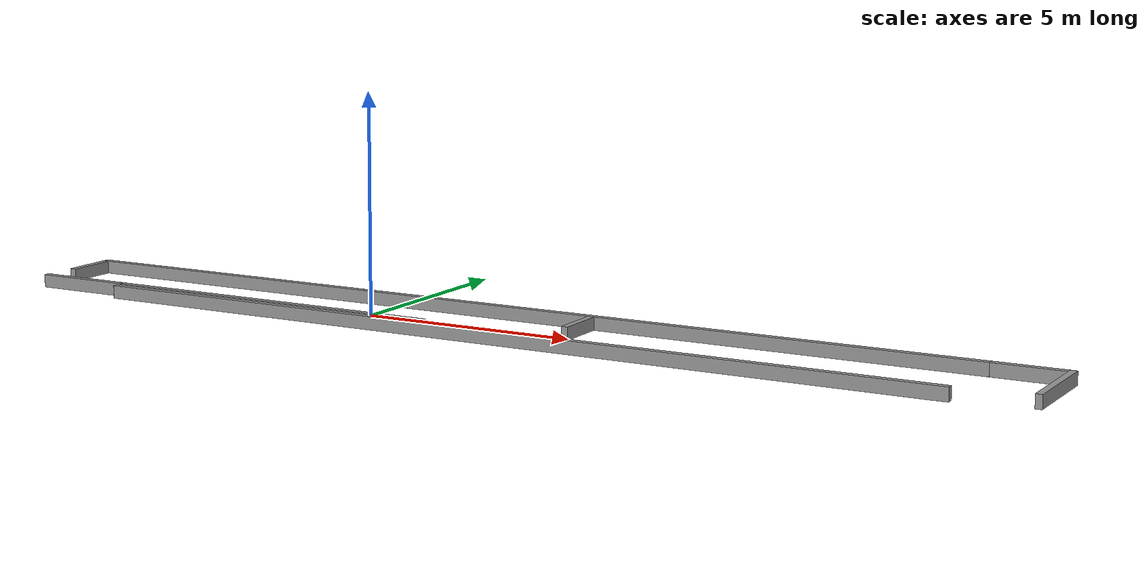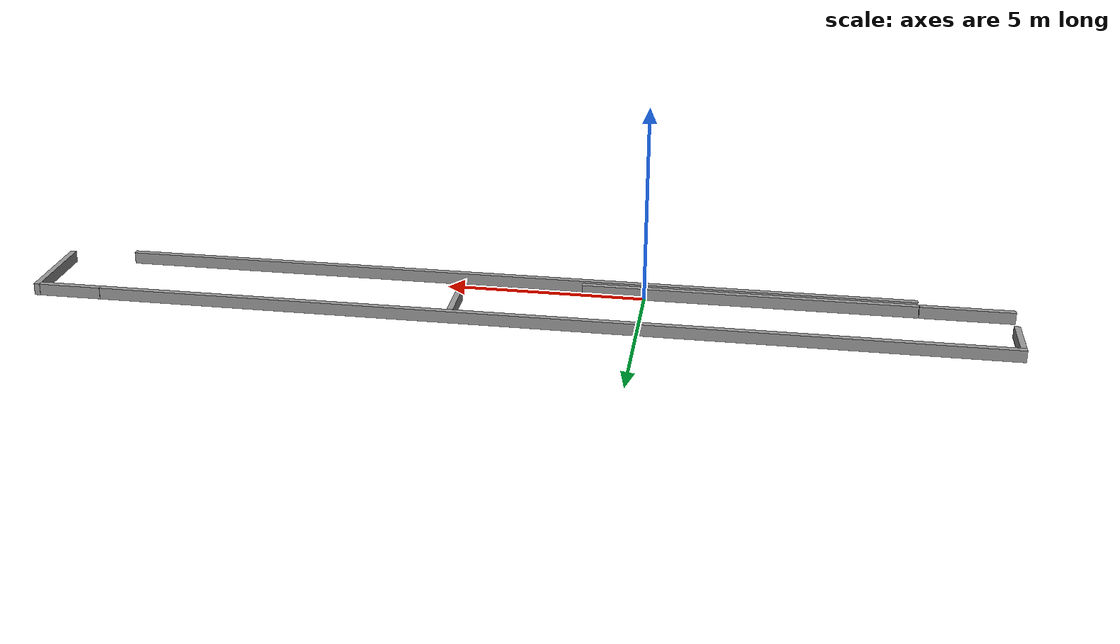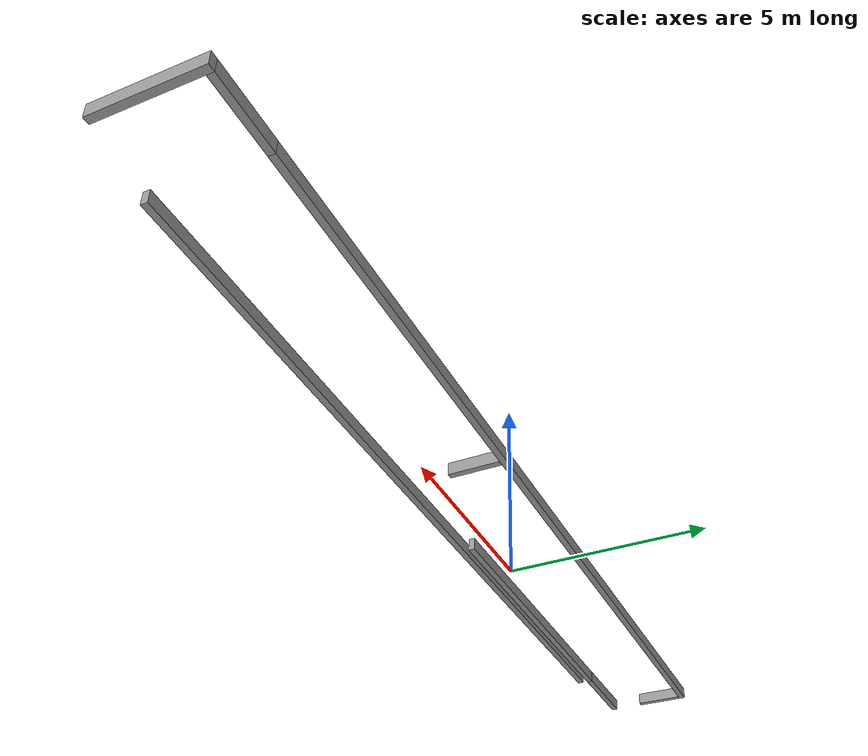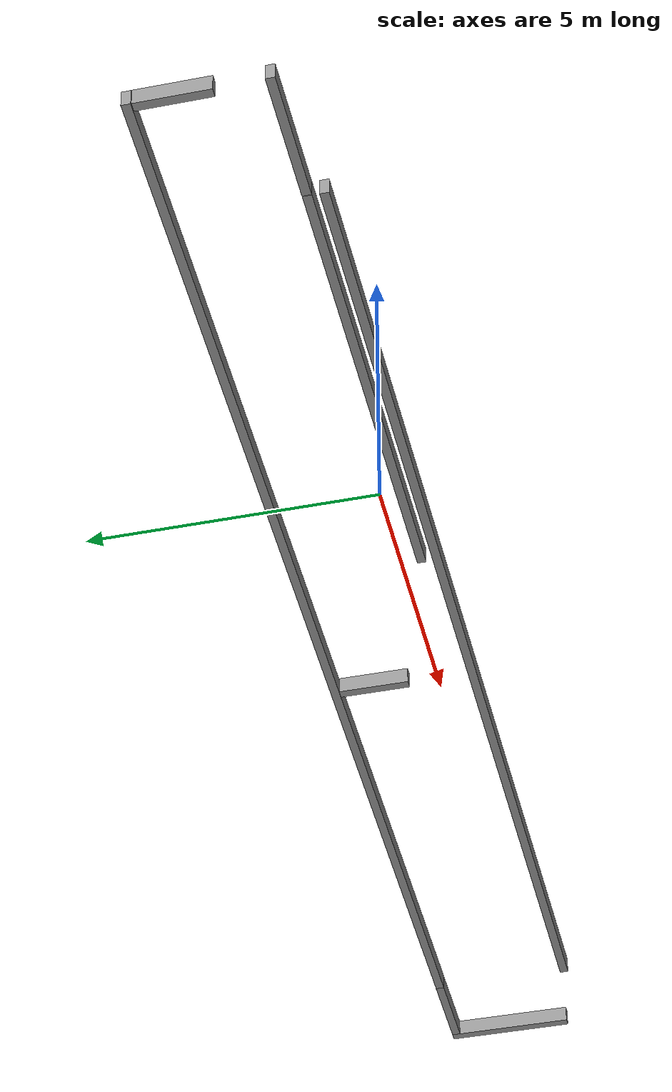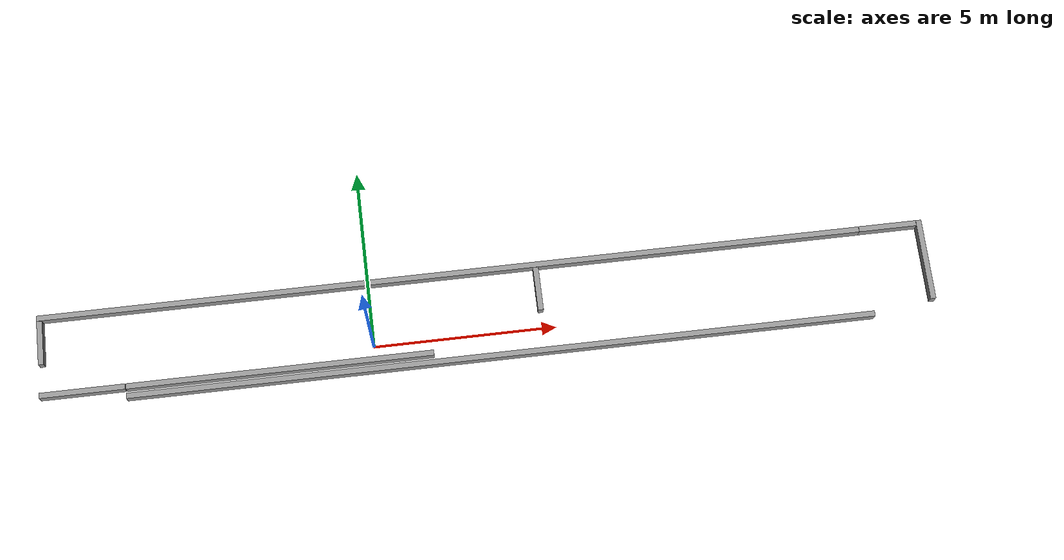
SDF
<?xml version='1.0'?>
<sdf version='1.6'>
  <model name='unit_box_map'>
    <link name='link'>
      <pose frame=''>3.45997 -0.623895 0 0 -0 0</pose>
      <inertial>
        <mass>1</mass>
        <inertia>
          <ixx>0.166667</ixx>
          <ixy>0</ixy>
          <ixz>0</ixz>
          <iyy>0.166667</iyy>
          <iyz>0</iyz>
          <izz>0.166667</izz>
        </inertia>
        <pose frame=''>0 0 0 0 -0 0</pose>
      </inertial>
      <self_collide>0</self_collide>
      <kinematic>0</kinematic>
      <gravity>1</gravity>
      <visual name='visual'>
        <geometry>
          <box>
            <size>20.4 0.15 0.3</size>
          </box>
        </geometry>
        <material>
          <script>
            <name>Gazebo/Grey</name>
            <uri>file://media/materials/scripts/gazebo.material</uri>
          </script>
          <ambient>0.3 0.3 0.3 1</ambient>
          <diffuse>0.7 0.7 0.7 1</diffuse>
          <specular>0.01 0.01 0.01 1</specular>
          <emissive>0 0 0 1</emissive>
          <shader type='vertex'>
            <normal_map>__default__</normal_map>
          </shader>
        </material>
        <pose frame=''>0 0 0 0 -0 0</pose>
        <cast_shadows>1</cast_shadows>
        <transparency>0</transparency>
      </visual>
      <collision name='collision'>
        <laser_retro>0</laser_retro>
        <max_contacts>10</max_contacts>
        <pose frame=''>0 0 0 0 -0 0</pose>
        <geometry>
          <box>
            <size>20.4 0.15 0.3</size>
          </box>
        </geometry>
        <surface>
          <friction>
            <ode>
              <mu>1</mu>
              <mu2>1</mu2>
              <fdir1>0 0 0</fdir1>
              <slip1>0</slip1>
              <slip2>0</slip2>
            </ode>
            <torsional>
              <coefficient>1</coefficient>
              <patch_radius>0</patch_radius>
              <surface_radius>0</surface_radius>
              <use_patch_radius>1</use_patch_radius>
              <ode>
                <slip>0</slip>
              </ode>
            </torsional>
          </friction>
          <bounce>
            <restitution_coefficient>0</restitution_coefficient>
            <threshold>1e+06</threshold>
          </bounce>
          <contact>
            <collide_without_contact>0</collide_without_contact>
            <collide_without_contact_bitmask>1</collide_without_contact_bitmask>
            <collide_bitmask>1</collide_bitmask>
            <ode>
              <soft_cfm>0</soft_cfm>
              <soft_erp>0.2</soft_erp>
              <kp>1e+13</kp>
              <kd>1</kd>
              <max_vel>0.01</max_vel>
              <min_depth>0</min_depth>
            </ode>
            <bullet>
              <split_impulse>1</split_impulse>
              <split_impulse_penetration_threshold>-0.01</split_impulse_penetration_threshold>
              <soft_cfm>0</soft_cfm>
              <soft_erp>0.2</soft_erp>
              <kp>1e+13</kp>
              <kd>1</kd>
            </bullet>
          </contact>
        </surface>
      </collision>
    </link>
    <link name='link_clone'>
      <pose frame=''>2.29271 1.80543 0 0 -0 0</pose>
      <inertial>
        <mass>1</mass>
        <inertia>
          <ixx>0.166667</ixx>
          <ixy>0</ixy>
          <ixz>0</ixz>
          <iyy>0.166667</iyy>
          <iyz>0</iyz>
          <izz>0.166667</izz>
        </inertia>
        <pose frame=''>0 0 0 0 -0 0</pose>
      </inertial>
      <self_collide>0</self_collide>
      <kinematic>0</kinematic>
      <gravity>1</gravity>
      <visual name='visual'>
        <geometry>
          <box>
            <size>22.7 0.15 0.3</size>
          </box>
        </geometry>
        <material>
          <script>
            <name>Gazebo/Grey</name>
            <uri>file://media/materials/scripts/gazebo.material</uri>
          </script>
          <ambient>0.3 0.3 0.3 1</ambient>
          <diffuse>0.7 0.7 0.7 1</diffuse>
          <specular>0.01 0.01 0.01 1</specular>
          <emissive>0 0 0 1</emissive>
          <shader type='vertex'>
            <normal_map>__default__</normal_map>
          </shader>
        </material>
        <pose frame=''>0 0 0 0 -0 0</pose>
        <cast_shadows>1</cast_shadows>
        <transparency>0</transparency>
      </visual>
      <collision name='collision'>
        <laser_retro>0</laser_retro>
        <max_contacts>10</max_contacts>
        <pose frame=''>0 0 0 0 -0 0</pose>
        <geometry>
          <box>
            <size>22.7 0.15 0.3</size>
          </box>
        </geometry>
        <surface>
          <friction>
            <ode>
              <mu>1</mu>
              <mu2>1</mu2>
              <fdir1>0 0 0</fdir1>
              <slip1>0</slip1>
              <slip2>0</slip2>
            </ode>
            <torsional>
              <coefficient>1</coefficient>
              <patch_radius>0</patch_radius>
              <surface_radius>0</surface_radius>
              <use_patch_radius>1</use_patch_radius>
              <ode>
                <slip>0</slip>
              </ode>
            </torsional>
          </friction>
          <bounce>
            <restitution_coefficient>0</restitution_coefficient>
            <threshold>1e+06</threshold>
          </bounce>
          <contact>
            <collide_without_contact>0</collide_without_contact>
            <collide_without_contact_bitmask>1</collide_without_contact_bitmask>
            <collide_bitmask>1</collide_bitmask>
            <ode>
              <soft_cfm>0</soft_cfm>
              <soft_erp>0.2</soft_erp>
              <kp>1e+13</kp>
              <kd>1</kd>
              <max_vel>0.01</max_vel>
              <min_depth>0</min_depth>
            </ode>
            <bullet>
              <split_impulse>1</split_impulse>
              <split_impulse_penetration_threshold>-0.01</split_impulse_penetration_threshold>
              <soft_cfm>0</soft_cfm>
              <soft_erp>0.2</soft_erp>
              <kp>1e+13</kp>
              <kd>1</kd>
            </bullet>
          </contact>
        </surface>
      </collision>
    </link>
    <link name='link_clone_0'>
      <pose frame=''>-2.56945 -0.360296 0 0 -0 0</pose>
      <inertial>
        <mass>1</mass>
        <inertia>
          <ixx>0.166667</ixx>
          <ixy>0</ixy>
          <ixz>0</ixz>
          <iyy>0.166667</iyy>
          <iyz>0</iyz>
          <izz>0.166667</izz>
        </inertia>
        <pose frame=''>0 0 0 0 -0 0</pose>
      </inertial>
      <self_collide>0</self_collide>
      <kinematic>0</kinematic>
      <gravity>1</gravity>
      <visual name='visual'>
        <geometry>
          <box>
            <size>8.35 0.15 0.3</size>
          </box>
        </geometry>
        <material>
          <script>
            <name>Gazebo/Grey</name>
            <uri>file://media/materials/scripts/gazebo.material</uri>
          </script>
          <ambient>0.3 0.3 0.3 1</ambient>
          <diffuse>0.7 0.7 0.7 1</diffuse>
          <specular>0.01 0.01 0.01 1</specular>
          <emissive>0 0 0 1</emissive>
          <shader type='vertex'>
            <normal_map>__default__</normal_map>
          </shader>
        </material>
        <pose frame=''>0 0 0 0 -0 0</pose>
        <cast_shadows>1</cast_shadows>
        <transparency>0</transparency>
      </visual>
      <collision name='collision'>
        <laser_retro>0</laser_retro>
        <max_contacts>10</max_contacts>
        <pose frame=''>0 0 0 0 -0 0</pose>
        <geometry>
          <box>
            <size>8.35 0.15 0.3</size>
          </box>
        </geometry>
        <surface>
          <friction>
            <ode>
              <mu>1</mu>
              <mu2>1</mu2>
              <fdir1>0 0 0</fdir1>
              <slip1>0</slip1>
              <slip2>0</slip2>
            </ode>
            <torsional>
              <coefficient>1</coefficient>
              <patch_radius>0</patch_radius>
              <surface_radius>0</surface_radius>
              <use_patch_radius>1</use_patch_radius>
              <ode>
                <slip>0</slip>
              </ode>
            </torsional>
          </friction>
          <bounce>
            <restitution_coefficient>0</restitution_coefficient>
            <threshold>1e+06</threshold>
          </bounce>
          <contact>
            <collide_without_contact>0</collide_without_contact>
            <collide_without_contact_bitmask>1</collide_without_contact_bitmask>
            <collide_bitmask>1</collide_bitmask>
            <ode>
              <soft_cfm>0</soft_cfm>
              <soft_erp>0.2</soft_erp>
              <kp>1e+13</kp>
              <kd>1</kd>
              <max_vel>0.01</max_vel>
              <min_depth>0</min_depth>
            </ode>
            <bullet>
              <split_impulse>1</split_impulse>
              <split_impulse_penetration_threshold>-0.01</split_impulse_penetration_threshold>
              <soft_cfm>0</soft_cfm>
              <soft_erp>0.2</soft_erp>
              <kp>1e+13</kp>
              <kd>1</kd>
            </bullet>
          </contact>
        </surface>
      </collision>
    </link>
    <link name='link_clone_0_clone'>
      <pose frame=''>4.6261 1.11574 0 0 -0 1.5707</pose>
      <inertial>
        <mass>1</mass>
        <inertia>
          <ixx>0.166667</ixx>
          <ixy>0</ixy>
          <ixz>0</ixz>
          <iyy>0.166667</iyy>
          <iyz>0</iyz>
          <izz>0.166667</izz>
        </inertia>
        <pose frame=''>0 0 0 0 -0 0</pose>
      </inertial>
      <self_collide>0</self_collide>
      <kinematic>0</kinematic>
      <gravity>1</gravity>
      <visual name='visual'>
        <geometry>
          <box>
            <size>1.22 0.15 0.3</size>
          </box>
        </geometry>
        <material>
          <script>
            <name>Gazebo/Grey</name>
            <uri>file://media/materials/scripts/gazebo.material</uri>
          </script>
          <ambient>0.3 0.3 0.3 1</ambient>
          <diffuse>0.7 0.7 0.7 1</diffuse>
          <specular>0.01 0.01 0.01 1</specular>
          <emissive>0 0 0 1</emissive>
          <shader type='vertex'>
            <normal_map>__default__</normal_map>
          </shader>
        </material>
        <pose frame=''>0 0 0 0 -0 0</pose>
        <cast_shadows>1</cast_shadows>
        <transparency>0</transparency>
      </visual>
      <collision name='collision'>
        <laser_retro>0</laser_retro>
        <max_contacts>10</max_contacts>
        <pose frame=''>0 0 0 0 -0 0</pose>
        <geometry>
          <box>
            <size>1.22 0.15 0.3</size>
          </box>
        </geometry>
        <surface>
          <friction>
            <ode>
              <mu>1</mu>
              <mu2>1</mu2>
              <fdir1>0 0 0</fdir1>
              <slip1>0</slip1>
              <slip2>0</slip2>
            </ode>
            <torsional>
              <coefficient>1</coefficient>
              <patch_radius>0</patch_radius>
              <surface_radius>0</surface_radius>
              <use_patch_radius>1</use_patch_radius>
              <ode>
                <slip>0</slip>
              </ode>
            </torsional>
          </friction>
          <bounce>
            <restitution_coefficient>0</restitution_coefficient>
            <threshold>1e+06</threshold>
          </bounce>
          <contact>
            <collide_without_contact>0</collide_without_contact>
            <collide_without_contact_bitmask>1</collide_without_contact_bitmask>
            <collide_bitmask>1</collide_bitmask>
            <ode>
              <soft_cfm>0</soft_cfm>
              <soft_erp>0.2</soft_erp>
              <kp>1e+13</kp>
              <kd>1</kd>
              <max_vel>0.01</max_vel>
              <min_depth>0</min_depth>
            </ode>
            <bullet>
              <split_impulse>1</split_impulse>
              <split_impulse_penetration_threshold>-0.01</split_impulse_penetration_threshold>
              <soft_cfm>0</soft_cfm>
              <soft_erp>0.2</soft_erp>
              <kp>1e+13</kp>
              <kd>1</kd>
            </bullet>
          </contact>
        </surface>
      </collision>
    </link>
    <link name='link_clone_0_clone_0'>
      <pose frame=''>-7.91206 -0.358783 0 0 -0 0</pose>
      <inertial>
        <mass>1</mass>
        <inertia>
          <ixx>0.166667</ixx>
          <ixy>0</ixy>
          <ixz>0</ixz>
          <iyy>0.166667</iyy>
          <iyz>0</iyz>
          <izz>0.166667</izz>
        </inertia>
        <pose frame=''>0 0 0 0 -0 0</pose>
      </inertial>
      <self_collide>0</self_collide>
      <kinematic>0</kinematic>
      <gravity>1</gravity>
      <visual name='visual'>
        <geometry>
          <box>
            <size>2.31 0.15 0.3</size>
          </box>
        </geometry>
        <material>
          <script>
            <name>Gazebo/Grey</name>
            <uri>file://media/materials/scripts/gazebo.material</uri>
          </script>
          <ambient>0.3 0.3 0.3 1</ambient>
          <diffuse>0.7 0.7 0.7 1</diffuse>
          <specular>0.01 0.01 0.01 1</specular>
          <emissive>0 0 0 1</emissive>
          <shader type='vertex'>
            <normal_map>__default__</normal_map>
          </shader>
        </material>
        <pose frame=''>0 0 0 0 -0 0</pose>
        <cast_shadows>1</cast_shadows>
        <transparency>0</transparency>
      </visual>
      <collision name='collision'>
        <laser_retro>0</laser_retro>
        <max_contacts>10</max_contacts>
        <pose frame=''>0 0 0 0 -0 0</pose>
        <geometry>
          <box>
            <size>2.31 0.15 0.3</size>
          </box>
        </geometry>
        <surface>
          <friction>
            <ode>
              <mu>1</mu>
              <mu2>1</mu2>
              <fdir1>0 0 0</fdir1>
              <slip1>0</slip1>
              <slip2>0</slip2>
            </ode>
            <torsional>
              <coefficient>1</coefficient>
              <patch_radius>0</patch_radius>
              <surface_radius>0</surface_radius>
              <use_patch_radius>1</use_patch_radius>
              <ode>
                <slip>0</slip>
              </ode>
            </torsional>
          </friction>
          <bounce>
            <restitution_coefficient>0</restitution_coefficient>
            <threshold>1e+06</threshold>
          </bounce>
          <contact>
            <collide_without_contact>0</collide_without_contact>
            <collide_without_contact_bitmask>1</collide_without_contact_bitmask>
            <collide_bitmask>1</collide_bitmask>
            <ode>
              <soft_cfm>0</soft_cfm>
              <soft_erp>0.2</soft_erp>
              <kp>1e+13</kp>
              <kd>1</kd>
              <max_vel>0.01</max_vel>
              <min_depth>0</min_depth>
            </ode>
            <bullet>
              <split_impulse>1</split_impulse>
              <split_impulse_penetration_threshold>-0.01</split_impulse_penetration_threshold>
              <soft_cfm>0</soft_cfm>
              <soft_erp>0.2</soft_erp>
              <kp>1e+13</kp>
              <kd>1</kd>
            </bullet>
          </contact>
        </surface>
      </collision>
    </link>
    <link name='link_clone_0_clone_0_clone'>
      <pose frame=''>14.4458 1.80734 0 0 -0 0</pose>
      <inertial>
        <mass>1</mass>
        <inertia>
          <ixx>0.166667</ixx>
          <ixy>0</ixy>
          <ixz>0</ixz>
          <iyy>0.166667</iyy>
          <iyz>0</iyz>
          <izz>0.166667</izz>
        </inertia>
        <pose frame=''>0 0 0 0 -0 0</pose>
      </inertial>
      <self_collide>0</self_collide>
      <kinematic>0</kinematic>
      <gravity>1</gravity>
      <visual name='visual'>
        <geometry>
          <box>
            <size>1.6 0.15 0.3</size>
          </box>
        </geometry>
        <material>
          <script>
            <name>Gazebo/Grey</name>
            <uri>file://media/materials/scripts/gazebo.material</uri>
          </script>
          <ambient>0.3 0.3 0.3 1</ambient>
          <diffuse>0.7 0.7 0.7 1</diffuse>
          <specular>0.01 0.01 0.01 1</specular>
          <emissive>0 0 0 1</emissive>
          <shader type='vertex'>
            <normal_map>__default__</normal_map>
          </shader>
        </material>
        <pose frame=''>0 0 0 0 -0 0</pose>
        <cast_shadows>1</cast_shadows>
        <transparency>0</transparency>
      </visual>
      <collision name='collision'>
        <laser_retro>0</laser_retro>
        <max_contacts>10</max_contacts>
        <pose frame=''>0 0 0 0 -0 0</pose>
        <geometry>
          <box>
            <size>1.6 0.15 0.3</size>
          </box>
        </geometry>
        <surface>
          <friction>
            <ode>
              <mu>1</mu>
              <mu2>1</mu2>
              <fdir1>0 0 0</fdir1>
              <slip1>0</slip1>
              <slip2>0</slip2>
            </ode>
            <torsional>
              <coefficient>1</coefficient>
              <patch_radius>0</patch_radius>
              <surface_radius>0</surface_radius>
              <use_patch_radius>1</use_patch_radius>
              <ode>
                <slip>0</slip>
              </ode>
            </torsional>
          </friction>
          <bounce>
            <restitution_coefficient>0</restitution_coefficient>
            <threshold>1e+06</threshold>
          </bounce>
          <contact>
            <collide_without_contact>0</collide_without_contact>
            <collide_without_contact_bitmask>1</collide_without_contact_bitmask>
            <collide_bitmask>1</collide_bitmask>
            <ode>
              <soft_cfm>0</soft_cfm>
              <soft_erp>0.2</soft_erp>
              <kp>1e+13</kp>
              <kd>1</kd>
              <max_vel>0.01</max_vel>
              <min_depth>0</min_depth>
            </ode>
            <bullet>
              <split_impulse>1</split_impulse>
              <split_impulse_penetration_threshold>-0.01</split_impulse_penetration_threshold>
              <soft_cfm>0</soft_cfm>
              <soft_erp>0.2</soft_erp>
              <kp>1e+13</kp>
              <kd>1</kd>
            </bullet>
          </contact>
        </surface>
      </collision>
    </link>
    <link name='link_clone_0_clone_clone'>
      <pose frame=''>-8.98335 1.10981 0 0 -0 1.5707</pose>
      <inertial>
        <mass>1</mass>
        <inertia>
          <ixx>0.166667</ixx>
          <ixy>0</ixy>
          <ixz>0</ixz>
          <iyy>0.166667</iyy>
          <iyz>0</iyz>
          <izz>0.166667</izz>
        </inertia>
        <pose frame=''>0 0 0 0 -0 0</pose>
      </inertial>
      <self_collide>0</self_collide>
      <kinematic>0</kinematic>
      <visual name='visual'>
        <geometry>
          <box>
            <size>1.22 0.15 0.3</size>
          </box>
        </geometry>
        <material>
          <script>
            <name>Gazebo/Grey</name>
            <uri>file://media/materials/scripts/gazebo.material</uri>
          </script>
          <ambient>0.3 0.3 0.3 1</ambient>
          <diffuse>0.7 0.7 0.7 1</diffuse>
          <specular>0.01 0.01 0.01 1</specular>
          <emissive>0 0 0 1</emissive>
          <shader type='vertex'>
            <normal_map>__default__</normal_map>
          </shader>
        </material>
        <pose frame=''>0 0 0 0 -0 0</pose>
        <cast_shadows>1</cast_shadows>
        <transparency>0</transparency>
      </visual>
      <collision name='collision'>
        <laser_retro>0</laser_retro>
        <max_contacts>10</max_contacts>
        <pose frame=''>0 0 0 0 -0 0</pose>
        <geometry>
          <box>
            <size>1.22 0.15 0.3</size>
          </box>
        </geometry>
        <surface>
          <friction>
            <ode>
              <mu>1</mu>
              <mu2>1</mu2>
              <fdir1>0 0 0</fdir1>
              <slip1>0</slip1>
              <slip2>0</slip2>
            </ode>
            <torsional>
              <coefficient>1</coefficient>
              <patch_radius>0</patch_radius>
              <surface_radius>0</surface_radius>
              <use_patch_radius>1</use_patch_radius>
              <ode>
                <slip>0</slip>
              </ode>
            </torsional>
          </friction>
          <bounce>
            <restitution_coefficient>0</restitution_coefficient>
            <threshold>1e+06</threshold>
          </bounce>
          <contact>
            <collide_without_contact>0</collide_without_contact>
            <collide_without_contact_bitmask>1</collide_without_contact_bitmask>
            <collide_bitmask>1</collide_bitmask>
            <ode>
              <soft_cfm>0</soft_cfm>
              <soft_erp>0.2</soft_erp>
              <kp>1e+13</kp>
              <kd>1</kd>
              <max_vel>0.01</max_vel>
              <min_depth>0</min_depth>
            </ode>
            <bullet>
              <split_impulse>1</split_impulse>
              <split_impulse_penetration_threshold>-0.01</split_impulse_penetration_threshold>
              <soft_cfm>0</soft_cfm>
              <soft_erp>0.2</soft_erp>
              <kp>1e+13</kp>
              <kd>1</kd>
            </bullet>
          </contact>
        </surface>
      </collision>
    </link>
    <link name='link_clone_0_clone_clone_0'>
      <pose frame=''>15.323 0.745916 0 0 -0 1.5707</pose>
      <inertial>
        <mass>1</mass>
        <inertia>
          <ixx>0.166667</ixx>
          <ixy>0</ixy>
          <ixz>0</ixz>
          <iyy>0.166667</iyy>
          <iyz>0</iyz>
          <izz>0.166667</izz>
        </inertia>
        <pose frame=''>0 0 0 0 -0 0</pose>
      </inertial>
      <self_collide>0</self_collide>
      <kinematic>0</kinematic>
      <gravity>1</gravity>
      <visual name='visual'>
        <geometry>
          <box>
            <size>2.27 0.15 0.3</size>
          </box>
        </geometry>
        <material>
          <script>
            <name>Gazebo/Grey</name>
            <uri>file://media/materials/scripts/gazebo.material</uri>
          </script>
          <ambient>0.3 0.3 0.3 1</ambient>
          <diffuse>0.7 0.7 0.7 1</diffuse>
          <specular>0.01 0.01 0.01 1</specular>
          <emissive>0 0 0 1</emissive>
          <shader type='vertex'>
            <normal_map>__default__</normal_map>
          </shader>
        </material>
        <pose frame=''>0 0 0 0 -0 0</pose>
        <cast_shadows>1</cast_shadows>
        <transparency>0</transparency>
      </visual>
      <collision name='collision'>
        <laser_retro>0</laser_retro>
        <max_contacts>10</max_contacts>
        <pose frame=''>0 0 0 0 -0 0</pose>
        <geometry>
          <box>
            <size>2.27 0.15 0.3</size>
          </box>
        </geometry>
        <surface>
          <friction>
            <ode>
              <mu>1</mu>
              <mu2>1</mu2>
              <fdir1>0 0 0</fdir1>
              <slip1>0</slip1>
              <slip2>0</slip2>
            </ode>
            <torsional>
              <coefficient>1</coefficient>
              <patch_radius>0</patch_radius>
              <surface_radius>0</surface_radius>
              <use_patch_radius>1</use_patch_radius>
              <ode>
                <slip>0</slip>
              </ode>
            </torsional>
          </friction>
          <bounce>
            <restitution_coefficient>0</restitution_coefficient>
            <threshold>1e+06</threshold>
          </bounce>
          <contact>
            <collide_without_contact>0</collide_without_contact>
            <collide_without_contact_bitmask>1</collide_without_contact_bitmask>
            <collide_bitmask>1</collide_bitmask>
            <ode>
              <soft_cfm>0</soft_cfm>
              <soft_erp>0.2</soft_erp>
              <kp>1e+13</kp>
              <kd>1</kd>
              <max_vel>0.01</max_vel>
              <min_depth>0</min_depth>
            </ode>
            <bullet>
              <split_impulse>1</split_impulse>
              <split_impulse_penetration_threshold>-0.01</split_impulse_penetration_threshold>
              <soft_cfm>0</soft_cfm>
              <soft_erp>0.2</soft_erp>
              <kp>1e+13</kp>
              <kd>1</kd>
            </bullet>
          </contact>
        </surface>
      </collision>
    </link>
    <static>0</static>
    <allow_auto_disable>1</allow_auto_disable>
  </model>
</sdf>
